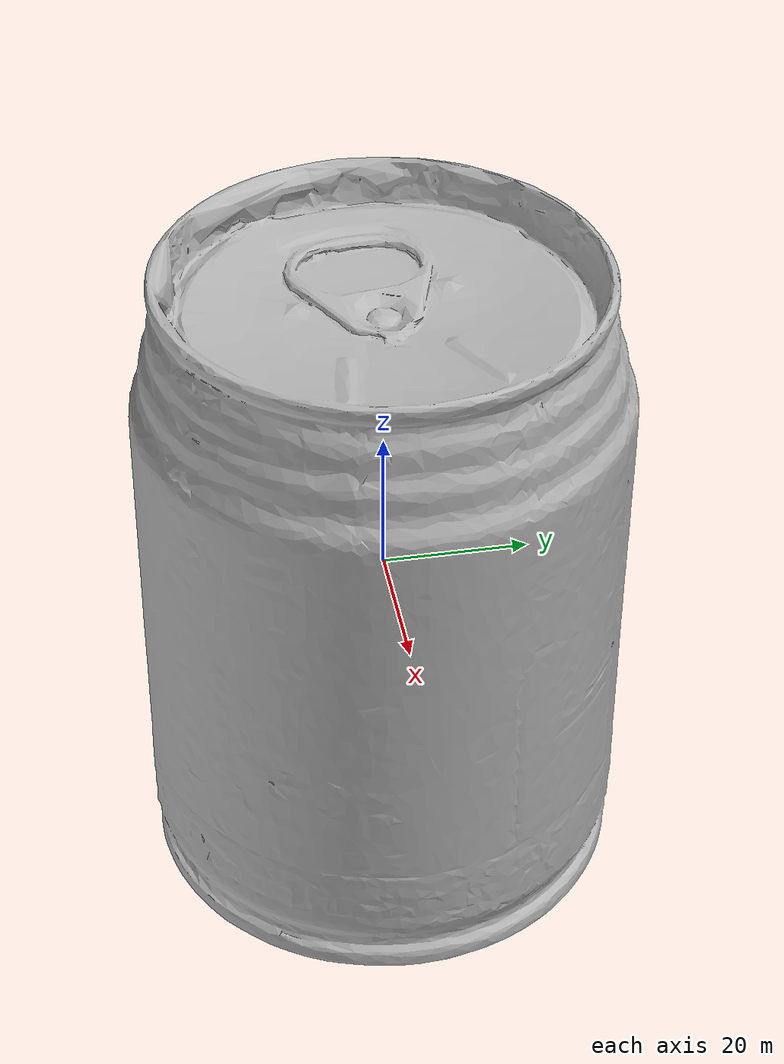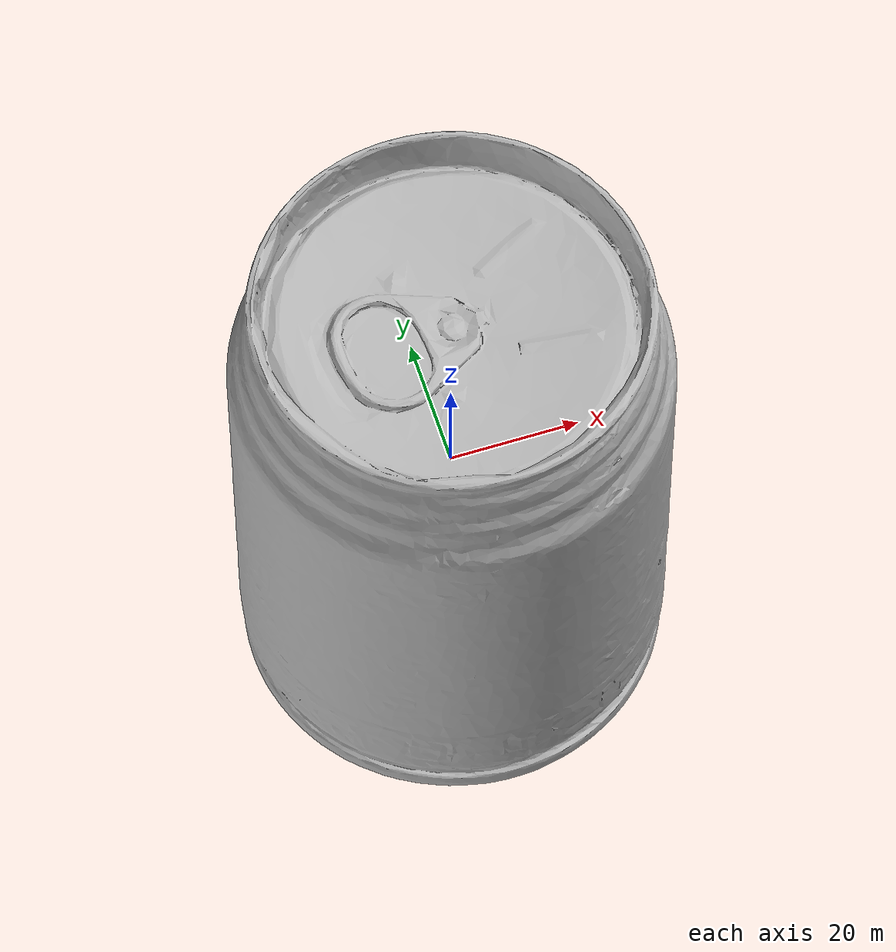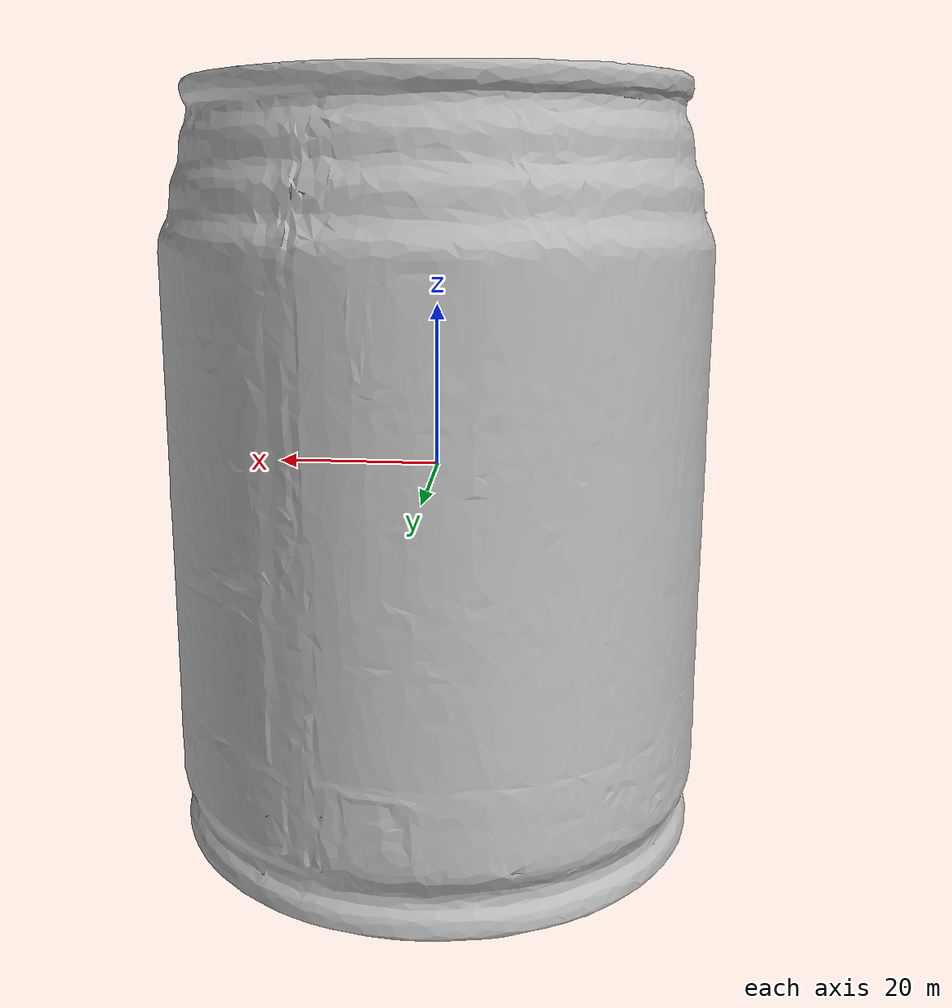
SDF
<sdf version="1.4">
 <world name="default">
  <light name="light1" type="point">
   <pose>0 0 1 0 0 0</pose>
   <diffuse>3 3 3 1</diffuse>
   <specular>3 3 3 1</specular>
  </light>
  <light name="light2" type="point">
   <pose>0 0.5 2 0 0 0</pose>
   <diffuse>1 1 1 1</diffuse>
   <specular>1 1 1 1</specular>
  </light>
  <light name="light3" type="point">
   <pose>0 0.5 2 0 0 0</pose>
   <diffuse>3 3 3 1</diffuse>
   <specular>3 3 3 1</specular>
  </light>
  <scene><ambient>0.7 0.7 0.7</ambient></scene>
  <model name="box1">
   <link name="link_box1">
    <collision name="default">
     <geometry>
      <mesh><uri>model://wooden_puzzle1/collision_meshes/collision.obj</uri><scale>1.0 1.0 1.0</scale></mesh>
     </geometry>
     <surface>
      <friction><ode><mu>0.5</mu><mu2>0.5</mu2></ode></friction>
      <contact><ode><max_vel>0</max_vel><min_depth>0.0001</min_depth><kp>1e8</kp></ode></contact>
     </surface>
    </collision>
    <visual name="default">
     <geometry>
      <mesh><uri>model://wooden_puzzle1/visual_meshes/visual.dae</uri><scale>1.0 1.0 1.0</scale></mesh>
     </geometry>
    </visual>
    <inertial>
     <mass>0.025116289034485817</mass>
     <pose>-0.00017350679263472557 7.972260937094688e-05 -9.191555000143126e-05 -0.07784885804399136 -0.2636065522190298 -0.5528757227143044</pose>
     <inertia>
      <ixx>4.7387575e-06</ixx>
      <iyy>4.647534e-06</iyy>
      <izz>4.7029785e-06</izz>
      <ixy>0</ixy>
      <ixz>0</ixz>
      <iyz>0</iyz>
     </inertia>
    </inertial>
   </link>
   <pose>0.04708651453256607 0.030118755996227264 0.016802022233605385 0.01051096483052367 -0.009456308818612123 -1.293945049933481</pose>
  </model>
  <model name="box3">
   <link name="link_box3">
    <collision name="default">
     <geometry>
      <mesh><uri>model://wooden_puzzle2/collision_meshes/collision.obj</uri><scale>1.0 1.0 1.0</scale></mesh>
     </geometry>
     <surface>
      <friction><ode><mu>0.5</mu><mu2>0.5</mu2></ode></friction>
      <contact><ode><max_vel>0</max_vel><min_depth>0.0001</min_depth><kp>1e8</kp></ode></contact>
     </surface>
    </collision>
    <visual name="default">
     <geometry>
      <mesh><uri>model://wooden_puzzle2/visual_meshes/visual.dae</uri><scale>1.0 1.0 1.0</scale></mesh>
     </geometry>
    </visual>
    <inertial>
     <mass>0.025376593694090843</mass>
     <pose>2.7402536943554878e-05 4.997663199901581e-05 6.587122334167361e-05 -0.1920355258808483 0.6112750807505014 -0.6338716229052327</pose>
     <inertia>
      <ixx>4.7172375e-06</ixx>
      <iyy>4.8472266e-06</iyy>
      <izz>4.778271e-06</izz>
      <ixy>0</ixy>
      <ixz>0</ixz>
      <iyz>0</iyz>
     </inertia>
    </inertial>
   </link>
   <pose>0.10473114252090454 0.014414379373192787 0.01691773347556591 0.02084886377379817 0.0007209174557190096 -2.1802172827486026</pose>
  </model>
  <model name="can1">
   <link name="link_can1">
    <collision name="default">
     <geometry>
      <mesh><uri>model://redbull/collision_meshes/collision.obj</uri><scale>1.0 1.0 1.0</scale></mesh>
     </geometry>
     <surface>
      <friction><ode><mu>0.5</mu><mu2>0.5</mu2></ode></friction>
      <contact><ode><max_vel>0</max_vel><min_depth>0.0001</min_depth><kp>1e8</kp></ode></contact>
     </surface>
    </collision>
    <visual name="default">
     <geometry>
      <mesh><uri>model://redbull/visual_meshes/visual.dae</uri><scale>1.0 1.0 1.0</scale></mesh>
     </geometry>
    </visual>
    <inertial>
     <mass>0.2544018626213074</mass>
     <pose>-2.2126756448415108e-05 -0.0001265947794308886 -0.0006860987632535398 0.0011376600102847077 -0.01080087162846833 0.5858227764205248</pose>
     <inertia>
      <ixx>0.00023919248</ixx>
      <iyy>0.00023939437</iyy>
      <izz>0.00014194298</izz>
      <ixy>0</ixy>
      <ixz>0</ixz>
      <iyz>0</iyz>
     </inertia>
    </inertial>
   </link>
   <pose>0.2670605480670929 -0.1865151971578598 0.04638563469052315 -0.010488994174022114 0.007261159913666164 -1.0328596052995027</pose>
  </model>
  <model name="can2">
   <link name="link_can2">
    <collision name="default">
     <geometry>
      <mesh><uri>model://pepsi/collision_meshes/collision.obj</uri><scale>1.0 1.0 1.0</scale></mesh>
     </geometry>
     <surface>
      <friction><ode><mu>0.5</mu><mu2>0.5</mu2></ode></friction>
      <contact><ode><max_vel>0</max_vel><min_depth>0.0001</min_depth><kp>1e8</kp></ode></contact>
     </surface>
    </collision>
    <visual name="default">
     <geometry><mesh><uri>model://pepsi/visual_meshes/visual.dae</uri><scale>1.0 1.0 1.0</scale></mesh></geometry>
    </visual>
    <inertial>
     <mass>0.4552207291126251</mass>
     <pose>-7.5590331107378e-05 2.99312814604491e-05 -0.0003384356095921248 -0.0010679690801074441 -0.0021734768369219134 0.5674650232372158</pose>
     <inertia>
      <ixx>0.0009068869</ixx>
      <iyy>0.0009062263</iyy>
      <izz>0.00019301806</izz>
      <ixy>0</ixy>
      <ixz>0</ixz>
      <iyz>0</iyz>
     </inertia>
    </inertial>
   </link>
   <pose>0.1180175170302391 -0.11984365433454514 0.074496328830719 -1.9003764049977428e-05 1.948836936227788e-06 2.1376119904395128</pose>
  </model>
  <physics type="ode">
   <max_contacts>50</max_contacts>
   <ode>
    <solver><type>quick</type><iters>75</iters></solver>
    <constraints>
     <contact_max_correcting_vel>0</contact_max_correcting_vel>
     <contact_surface_layer>0</contact_surface_layer>
    </constraints>
   </ode>
  </physics>
 </world>
</sdf>
